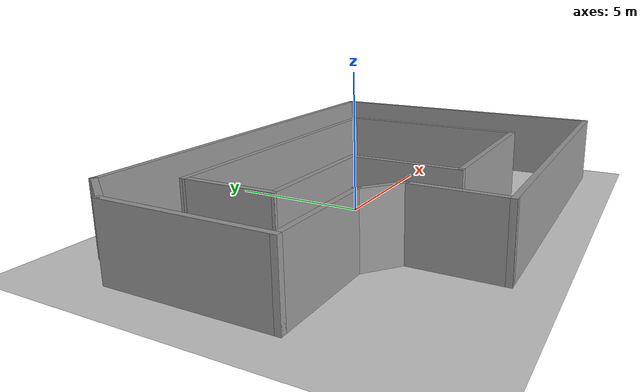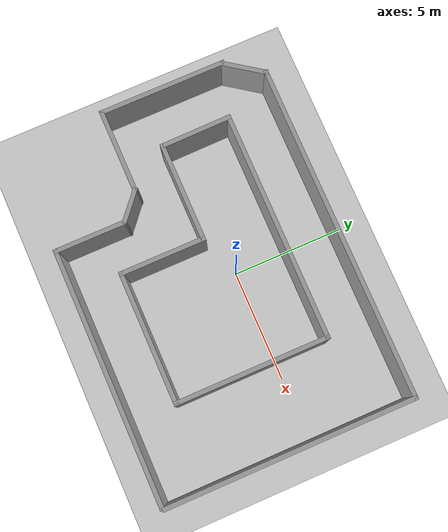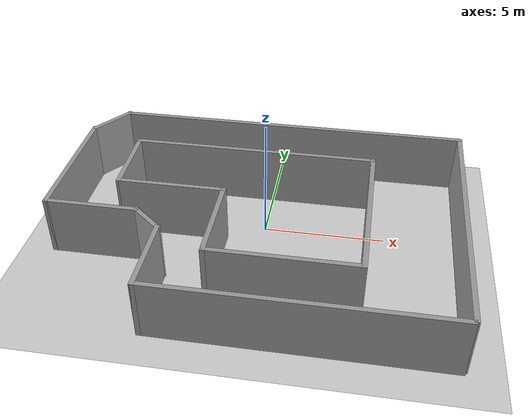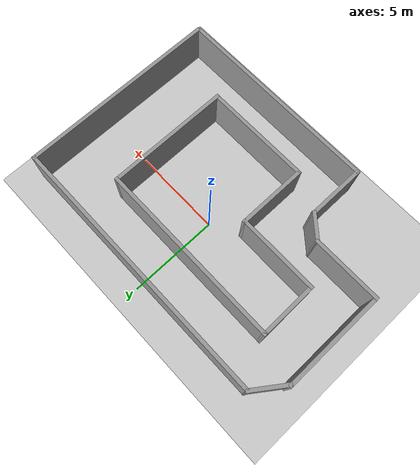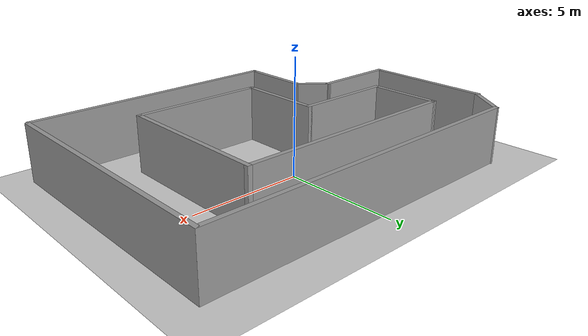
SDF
<sdf version="1.4">
 <world name="default">
  <light name="sun" type="directional">
   <pose>0 0 10 0 -0 0</pose>
   <diffuse>0.8 0.8 0.8 1</diffuse>
   <specular>0.2 0.2 0.2 1</specular>
   <attenuation>
    <range>1000</range>
    <constant>0.9</constant>
    <linear>0.01</linear>
    <quadratic>0.001</quadratic>
   </attenuation>
   <direction>-0.5 0.1 -0.9</direction>
  </light>
  <model name="ground_plane">
   <static>1</static>
   <link name="link">
    <collision name="collision">
     <geometry><plane><normal>0 0 1</normal><size>100 100</size></plane></geometry>
     <surface><friction><ode><mu>100</mu><mu2>50</mu2></ode></friction></surface>
    </collision>
    <visual name="visual">
     <cast_shadows>0</cast_shadows>
     <geometry><plane><normal>0 0 1</normal><size>100 100</size></plane></geometry>
     <material>
      <script><uri>file://media/materials/scripts/gazebo.material</uri><name>Gazebo/Grey</name></script>
     </material>
    </visual>
    <velocity_decay><linear>0</linear><angular>0</angular></velocity_decay>
   </link>
  </model>
  <physics type="ode">
   <max_step_size>0.001</max_step_size>
   <real_time_factor>1</real_time_factor>
   <real_time_update_rate>1000</real_time_update_rate>
   <gravity>0 0 -9.8</gravity>
  </physics>
  <scene><ambient>0.4 0.4 0.4 1</ambient><background>0.7 0.7 0.7 1</background><shadows>1</shadows></scene>
  <spherical_coordinates>
   <surface_model>EARTH_WGS84</surface_model>
   <latitude_deg>0</latitude_deg>
   <longitude_deg>0</longitude_deg>
   <elevation>0</elevation>
   <heading_deg>0</heading_deg>
  </spherical_coordinates>
  <model name="simpleTrack">
   <link name="Wall_0">
    <collision name="Wall_0_Collision">
     <geometry><box><size>4.5659 0.2 2.5</size></box></geometry>
     <pose>0 0 1.25 0 -0 0</pose>
    </collision>
    <visual name="Wall_0_Visual">
     <pose>0 0 1.25 0 -0 0</pose>
     <geometry><box><size>4.5659 0.2 2.5</size></box></geometry>
     <material>
      <script><uri>file://media/materials/scripts/gazebo.material</uri><name>Gazebo/Grey</name></script>
     </material>
    </visual>
    <velocity_decay><linear>0</linear><angular>0</angular></velocity_decay>
    <pose>-7.26275 3.19307 0 0 -0 0</pose>
   </link>
   <link name="Wall_1">
    <collision name="Wall_1_Collision">
     <geometry><box><size>3.91916 0.2 2.5</size></box></geometry>
     <pose>0 0 1.25 0 -0 0</pose>
    </collision>
    <visual name="Wall_1_Visual">
     <pose>0 0 1.25 0 -0 0</pose>
     <geometry><box><size>3.91916 0.2 2.5</size></box></geometry>
     <material>
      <script><uri>file://media/materials/scripts/gazebo.material</uri><name>Gazebo/Grey</name></script>
     </material>
    </visual>
    <velocity_decay><linear>0</linear><angular>0</angular></velocity_decay>
    <pose>-5.0798 1.33349 0 0 0 -1.5708</pose>
   </link>
   <link name="Wall_12">
    <collision name="Wall_12_Collision">
     <geometry><box><size>2.10733 0.2 2.5</size></box></geometry>
     <pose>0 0 1.25 0 -0 0</pose>
    </collision>
    <visual name="Wall_12_Visual">
     <pose>0 0 1.25 0 -0 0</pose>
     <geometry><box><size>2.10733 0.2 2.5</size></box></geometry>
     <material>
      <script><uri>file://media/materials/scripts/gazebo.material</uri><name>Gazebo/Grey</name></script>
     </material>
    </visual>
    <velocity_decay><linear>0</linear><angular>0</angular></velocity_decay>
    <pose>-11.238 7.7627 0 0 -0 0.953041</pose>
   </link>
   <link name="Wall_13">
    <collision name="Wall_13_Collision">
     <geometry><box><size>15.339 0.2 2.5</size></box></geometry>
     <pose>0 0 1.25 0 -0 0</pose>
    </collision>
    <visual name="Wall_13_Visual">
     <pose>0 0 1.25 0 -0 0</pose>
     <geometry><box><size>15.339 0.2 2.5</size></box></geometry>
     <material>
      <script><uri>file://media/materials/scripts/gazebo.material</uri><name>Gazebo/Grey</name></script>
     </material>
    </visual>
    <velocity_decay><linear>0</linear><angular>0</angular></velocity_decay>
    <pose>-3.11606 8.54011 0 0 -0 0</pose>
   </link>
   <link name="Wall_14">
    <collision name="Wall_14_Collision">
     <geometry><box><size>11.3292 0.2 2.5</size></box></geometry>
     <pose>0 0 1.25 0 -0 0</pose>
    </collision>
    <visual name="Wall_14_Visual">
     <pose>0 0 1.25 0 -0 0</pose>
     <geometry><box><size>11.3292 0.2 2.5</size></box></geometry>
     <material>
      <script><uri>file://media/materials/scripts/gazebo.material</uri><name>Gazebo/Grey</name></script>
     </material>
    </visual>
    <velocity_decay><linear>0</linear><angular>0</angular></velocity_decay>
    <pose>4.45346 2.97548 0 0 0 -1.5708</pose>
   </link>
   <link name="Wall_16">
    <collision name="Wall_16_Collision">
     <geometry><box><size>5.80554 0.2 2.5</size></box></geometry>
     <pose>0 0 1.25 0 -0 0</pose>
    </collision>
    <visual name="Wall_16_Visual">
     <pose>0 0 1.25 0 -0 0</pose>
     <geometry><box><size>5.80554 0.2 2.5</size></box></geometry>
     <material>
      <script><uri>file://media/materials/scripts/gazebo.material</uri><name>Gazebo/Grey</name></script>
     </material>
    </visual>
    <velocity_decay><linear>0</linear><angular>0</angular></velocity_decay>
    <pose>-11.8312 4.18252 0 0 0 -1.5708</pose>
   </link>
   <link name="Wall_17">
    <collision name="Wall_17_Collision">
     <geometry><box><size>3.88247 0.2 2.5</size></box></geometry>
     <pose>0 0 1.25 0 -0 0</pose>
    </collision>
    <visual name="Wall_17_Visual">
     <pose>0 0 1.25 0 -0 0</pose>
     <geometry><box><size>3.88247 0.2 2.5</size></box></geometry>
     <material>
      <script><uri>file://media/materials/scripts/gazebo.material</uri><name>Gazebo/Grey</name></script>
     </material>
    </visual>
    <velocity_decay><linear>0</linear><angular>0</angular></velocity_decay>
    <pose>-9.99001 1.37975 0 0 -0 0</pose>
   </link>
   <link name="Wall_18">
    <collision name="Wall_18_Collision">
     <geometry><box><size>1.65123 0.2 2.5</size></box></geometry>
     <pose>0 0 1.25 0 -0 0</pose>
    </collision>
    <visual name="Wall_18_Visual">
     <pose>0 0 1.25 0 -0 0</pose>
     <geometry><box><size>1.65123 0.2 2.5</size></box></geometry>
     <material>
      <script><uri>file://media/materials/scripts/gazebo.material</uri><name>Gazebo/Grey</name></script>
     </material>
    </visual>
    <velocity_decay><linear>0</linear><angular>0</angular></velocity_decay>
    <pose>-7.5964 0.909208 0 0 0 -0.705568</pose>
   </link>
   <link name="Wall_19">
    <collision name="Wall_19_Collision">
     <geometry><box><size>3.30964 0.2 2.5</size></box></geometry>
     <pose>0 0 1.25 0 -0 0</pose>
    </collision>
    <visual name="Wall_19_Visual">
     <pose>0 0 1.25 0 -0 0</pose>
     <geometry><box><size>3.30964 0.2 2.5</size></box></geometry>
     <material>
      <script><uri>file://media/materials/scripts/gazebo.material</uri><name>Gazebo/Grey</name></script>
     </material>
    </visual>
    <velocity_decay><linear>0</linear><angular>0</angular></velocity_decay>
    <pose>-7.04403 -1.11615 0 0 0 -1.5708</pose>
   </link>
   <link name="Wall_2">
    <collision name="Wall_2_Collision">
     <geometry><box><size>6.03982 0.2 2.5</size></box></geometry>
     <pose>0 0 1.25 0 -0 0</pose>
    </collision>
    <visual name="Wall_2_Visual">
     <pose>0 0 1.25 0 -0 0</pose>
     <geometry><box><size>6.03982 0.2 2.5</size></box></geometry>
     <material>
      <script><uri>file://media/materials/scripts/gazebo.material</uri><name>Gazebo/Grey</name></script>
     </material>
    </visual>
    <velocity_decay><linear>0</linear><angular>0</angular></velocity_decay>
    <pose>-2.15989 -0.526087 0 0 -0 0</pose>
   </link>
   <link name="Wall_20">
    <collision name="Wall_20_Collision">
     <geometry><box><size>11.6157 0.2 2.5</size></box></geometry>
     <pose>0 0 1.25 0 -0 0</pose>
    </collision>
    <visual name="Wall_20_Visual">
     <pose>0 0 1.25 0 -0 0</pose>
     <geometry><box><size>11.6157 0.2 2.5</size></box></geometry>
     <material>
      <script><uri>file://media/materials/scripts/gazebo.material</uri><name>Gazebo/Grey</name></script>
     </material>
    </visual>
    <velocity_decay><linear>0</linear><angular>0</angular></velocity_decay>
    <pose>-1.3362 -2.67097 0 0 -0 0</pose>
   </link>
   <link name="Wall_3">
    <collision name="Wall_3_Collision">
     <geometry><box><size>6.99567 0.2 2.5</size></box></geometry>
     <pose>0 0 1.25 0 -0 0</pose>
    </collision>
    <visual name="Wall_3_Visual">
     <pose>0 0 1.25 0 -0 0</pose>
     <geometry><box><size>6.99567 0.2 2.5</size></box></geometry>
     <material>
      <script><uri>file://media/materials/scripts/gazebo.material</uri><name>Gazebo/Grey</name></script>
     </material>
    </visual>
    <velocity_decay><linear>0</linear><angular>0</angular></velocity_decay>
    <pose>0.76002 2.87175 0 0 -0 1.5708</pose>
   </link>
   <link name="Wall_4">
    <collision name="Wall_4_Collision">
     <geometry><box><size>10.4469 0.2 2.5</size></box></geometry>
     <pose>0 0 1.25 0 -0 0</pose>
    </collision>
    <visual name="Wall_4_Visual">
     <pose>0 0 1.25 0 -0 0</pose>
     <geometry><box><size>10.4469 0.2 2.5</size></box></geometry>
     <material>
      <script><uri>file://media/materials/scripts/gazebo.material</uri><name>Gazebo/Grey</name></script>
     </material>
    </visual>
    <velocity_decay><linear>0</linear><angular>0</angular></velocity_decay>
    <pose>-4.36342 6.26958 0 0 -0 3.14159</pose>
   </link>
   <link name="Wall_5">
    <collision name="Wall_5_Collision">
     <geometry><box><size>3.27679 0.2 2.5</size></box></geometry>
     <pose>0 0 1.25 0 -0 0</pose>
    </collision>
    <visual name="Wall_5_Visual">
     <pose>0 0 1.25 0 -0 0</pose>
     <geometry><box><size>3.27679 0.2 2.5</size></box></geometry>
     <material>
      <script><uri>file://media/materials/scripts/gazebo.material</uri><name>Gazebo/Grey</name></script>
     </material>
    </visual>
    <velocity_decay><linear>0</linear><angular>0</angular></velocity_decay>
    <pose>-9.46628 4.73133 0 0 0 -1.55742</pose>
   </link>
   <static>1</static>
   <pose>3.49486 -4 0 0 -0 0</pose>
  </model>
 </world>
</sdf>
